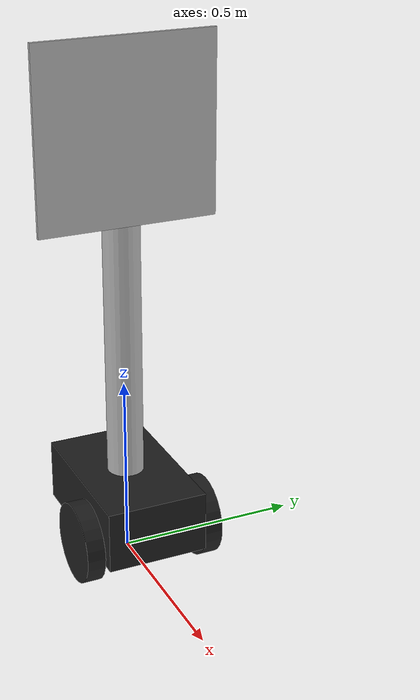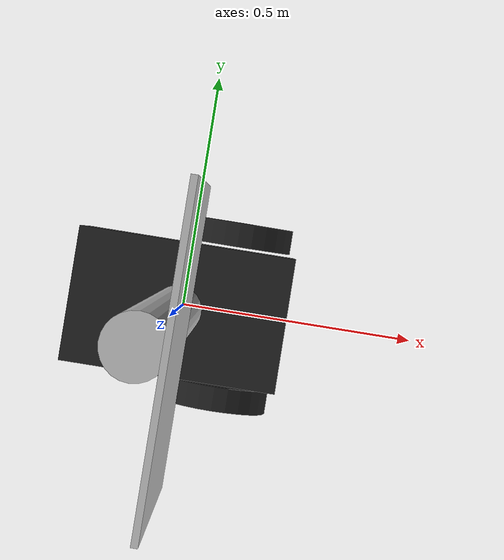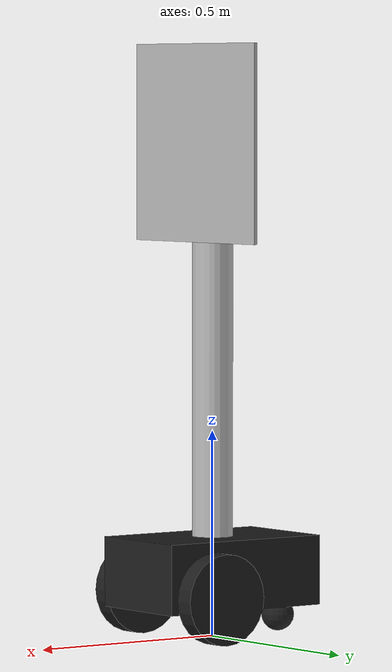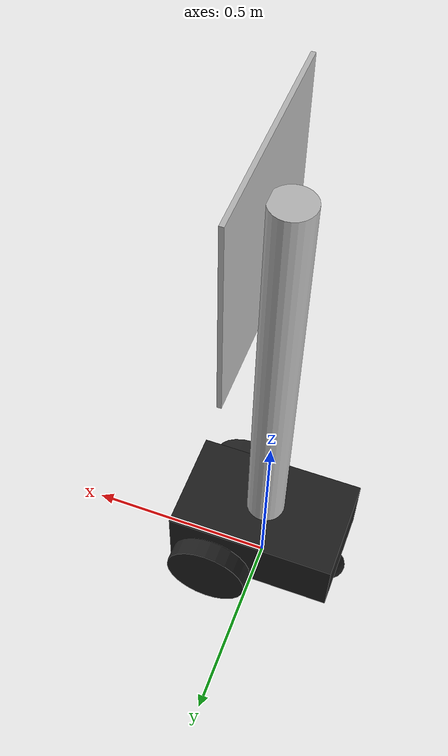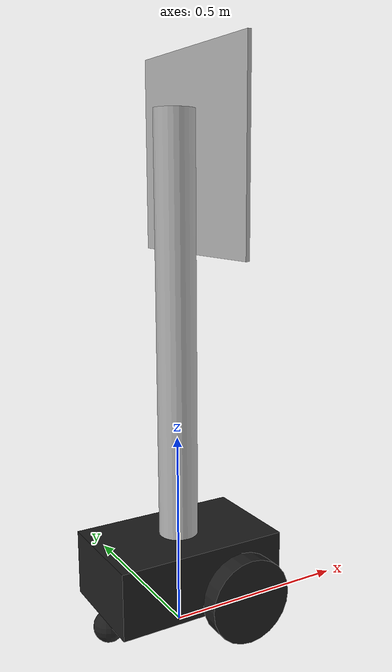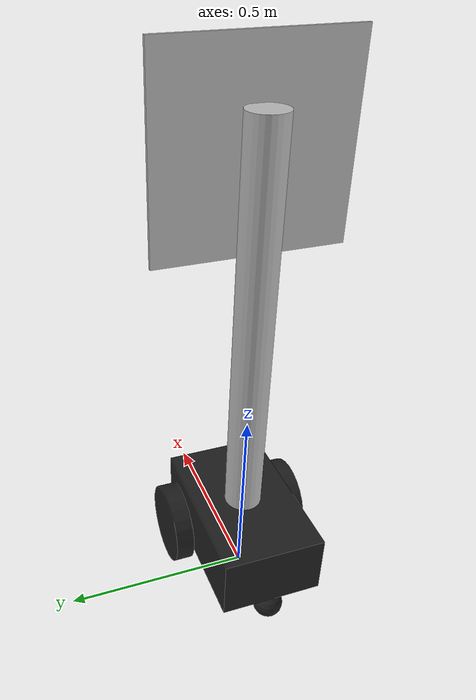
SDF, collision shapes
<?xml version="1.0" ?>
<sdf version="1.5">
  <model name="tag_car_forward">

    <include>
      <uri>model://move_car</uri>
    </include>

    <link name='tag'>
      <pose frame=''> 0.05 0.0 1.2 0 1.57 3.14</pose>
      <inertial>
        <pose>0 0 0 0 0 0</pose>
        <mass>0.1</mass>
        <inertia>
          <ixx>0</ixx>
          <ixy>0</ixy>
          <ixz>0</ixz>
          <iyy>0</iyy>
          <iyz>0</iyz>
          <izz>0</izz>
        </inertia>
      </inertial>
      <collision name="platform_collision">
        <geometry>
          <box>
            <size>0.48 0.48 0.01</size>
          </box>
        </geometry>
        <surface>
          <friction>
            <ode>
              <mu>1.0</mu>
              <mu2>1.0</mu2>
            </ode>
          </friction>
        </surface>
      </collision>
      <visual name="visual">
        <cast_shadows>false</cast_shadows>
        <geometry>
          <box>
            <size>0.48 0.48 0.01</size>
          </box>
        </geometry>
        <material>
          <script>
            <uri>model://single_aruco/single_aruco.material</uri>
            <name>arcuo_92</name>
          </script>
        </material>
      </visual>
    </link>

    <link name='cylinder_link'>
    <pose frame=''> 0.0 0.0 0.70 0.0 0.0 0.0</pose>
      <inertial>
        <mass>1</mass>
        <inertia>
          <ixx>0.0</ixx>
          <ixy>0</ixy>
          <ixz>0</ixz>
          <iyy>0.0</iyy>
          <iyz>0</iyz>
          <izz>0.0</izz>
        </inertia>
      </inertial>
      <collision name='collision'>
        <geometry>
          <cylinder>
            <radius>0.05</radius>
            <length>1.2</length>
          </cylinder>
        </geometry>
        <max_contacts>10</max_contacts>
        <surface>
          <contact>
            <collide_without_contact>1</collide_without_contact>
            <ode/>
          </contact>
          <bounce/>
          <friction>
            <torsional>
              <ode/>
            </torsional>
            <ode/>
          </friction>
        </surface>
      </collision>
      <visual name='visual'>
        <geometry>
          <cylinder>
            <radius>0.05</radius>
            <length>1.2</length>
          </cylinder>
        </geometry>
      </visual>
      <self_collide>0</self_collide>
      <kinematic>0</kinematic>
      <gravity>0</gravity>
      <enable_wind>0</enable_wind>
    </link>

    <joint name='tag_link' type='fixed'>
      <pose>0 0 0 0 0 0</pose>
      <child>tag</child>
      <parent>cylinder_link</parent>
    </joint>

    <joint name='cylinder_link' type='fixed'>
      <pose>0 0 0 0 -0 0</pose>
      <child>cylinder_link</child>
      <parent>move_car::chassis</parent>
    </joint>

    </model>
</sdf>

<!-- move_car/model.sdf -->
<sdf version="1.5">
  <model name="move_car">
    <link name="chassis">
      <pose>0 0 0.16 0 0 0</pose>
      <inertial>
        <mass>5.67</mass>
        <inertia>
          <ixx>0.07</ixx>
          <iyy>0.08</iyy>
          <izz>0.10</izz>
          <ixy>0</ixy>
          <ixz>0</ixz>
          <iyz>0</iyz>
        </inertia>
      </inertial>
      <collision name="collision">
        <geometry>
          <box>
            <size>0.445 0.277 0.17</size>
          </box>
        </geometry>
      </collision>
      <collision name="castor_collision">
        <pose>-0.200 0 -0.12 0 0 0</pose>
        <geometry>
          <sphere>
            <radius>0.04</radius>
          </sphere>
        </geometry>
        <surface>
          <friction>
            <ode>
              <mu>0</mu>
              <mu2>0</mu2>
              <slip1>1.0</slip1>
              <slip2>1.0</slip2>
            </ode>
          </friction>
        </surface>
      </collision>
      <visual name="visual">
        <pose>0 0 0.04 0 0 0</pose>
        <geometry>
          <mesh>
            <uri>model://move_car/meshes/chassis.dae</uri>
          </mesh>
        </geometry>
      </visual>
      <visual name="castor_visual">
        <pose>-0.200 0 -0.12 0 0 0</pose>
        <geometry>
          <sphere>
            <radius>0.04</radius>
          </sphere>
        </geometry>
        <material>
          <script>
            <uri>file://media/materials/scripts/gazebo.material</uri>
            <name>Gazebo/FlatBlack</name>
          </script>
        </material>
      </visual>
    </link>
    <link name="right_wheel">
      <pose>0.1 -.17 0.11 0 1.5707 1.5707</pose>
      <inertial>
        <mass>1.5</mass>
        <inertia>
          <ixx>0.0051</ixx>
          <iyy>0.0051</iyy>
          <izz>0.0090</izz>
          <ixy>0</ixy>
          <ixz>0</ixz>
          <iyz>0</iyz>
        </inertia>
      </inertial>
      <collision name="collision">
        <geometry>
          <cylinder>
            <radius>0.11</radius>
            <length>0.05</length>
          </cylinder>
        </geometry>
        <surface>
          <friction>
            <ode>
              <mu>100000.0</mu>
              <mu2>100000.0</mu2>
              <slip1>0.0</slip1>
              <slip2>0.0</slip2>
            </ode>
          </friction>
        </surface>
      </collision>
      <visual name="visual">
        <geometry>
          <cylinder>
            <radius>0.11</radius>
            <length>0.05</length>
          </cylinder>
        </geometry>
        <material>
          <script>
            <uri>file://media/materials/scripts/gazebo.material</uri>
            <name>Gazebo/FlatBlack</name>
          </script>
        </material>
      </visual>
    </link>
    <link name="left_wheel">
      <pose>0.1 .17 0.11 0 1.5707 1.5707</pose>
      <inertial>
        <mass>1.5</mass>
        <inertia>
          <ixx>0.0051</ixx>
          <iyy>0.0051</iyy>
          <izz>0.0090</izz>
          <ixy>0</ixy>
          <ixz>0</ixz>
          <iyz>0</iyz>
        </inertia>
      </inertial>
      <collision name="collision">
        <geometry>
          <cylinder>
            <radius>0.11</radius>
            <length>0.05</length>
          </cylinder>
        </geometry>
        <surface>
          <friction>
            <ode>
              <mu>100000.0</mu>
              <mu2>100000.0</mu2>
              <slip1>0.0</slip1>
              <slip2>0.0</slip2>
            </ode>
          </friction>
        </surface>
      </collision>
      <visual name="visual">
        <geometry>
          <cylinder>
            <radius>0.11</radius>
            <length>0.05</length>
          </cylinder>
        </geometry>
        <material>
          <script>
            <uri>file://media/materials/scripts/gazebo.material</uri>
            <name>Gazebo/FlatBlack</name>
          </script>
        </material>
      </visual>
    </link>

    <joint type="revolute" name="left_wheel_hinge">
      <pose>0 0 -0.03 0 0 0</pose>
      <child>left_wheel</child>
      <parent>chassis</parent>
      <axis>
        <xyz>0 1 0</xyz>
        <use_parent_model_frame>true</use_parent_model_frame>
      </axis>
    </joint>
    <joint type="revolute" name="right_wheel_hinge">
      <pose>0 0 0.03 0 0 0</pose>
      <child>right_wheel</child>
      <parent>chassis</parent>
      <axis>
        <xyz>0 1 0</xyz>
        <use_parent_model_frame>true</use_parent_model_frame>
      </axis>
    </joint>
    <plugin name="differential_drive_controller" filename="libgazebo_ros_diff_drive.so">
        <legacyMode>false</legacyMode>
        <alwaysOn>true</alwaysOn>
      <updateRate>100.0</updateRate>
      <leftJoint>left_wheel_hinge</leftJoint>
      <rightJoint>right_wheel_hinge</rightJoint>
      <wheelSeparation>0.32</wheelSeparation>
      <wheelDiameter>0.18</wheelDiameter>
      <wheelTorque>5</wheelTorque>
        <wheelAcceleration>0</wheelAcceleration>
        <robotNamespace>/</robotNamespace>
      <commandTopic>cmd_vel</commandTopic>
      <odometryTopic>tag_odom</odometryTopic>
        <odometrySource>world</odometrySource><!--Other option is World or ENCODER-->
      <odometryFrame>odom</odometryFrame>
        <robotBaseFrame>base_link</robotBaseFrame>
        <publishTf>1</publishTf>
        <publishWheelTF>false</publishWheelTF>
        <publishOdomTF>true</publishOdomTF>
        <publishWheelJointState>false</publishWheelJointState>
        <rosDebugLevel>Warn</rosDebugLevel>
    </plugin>
  </model>
</sdf>
